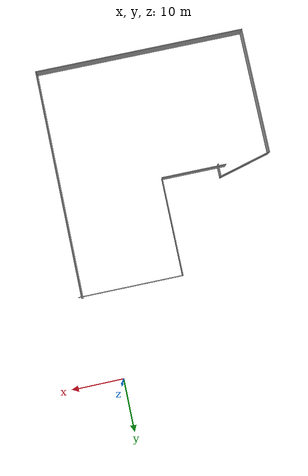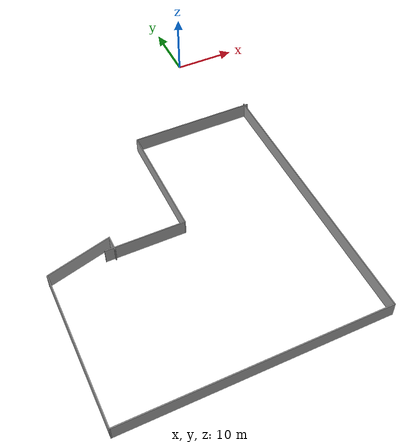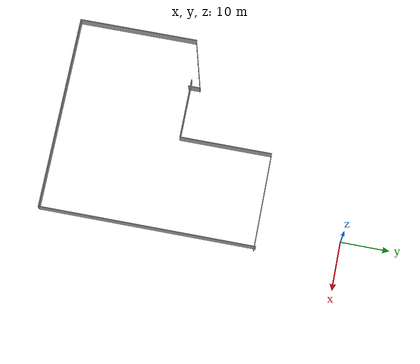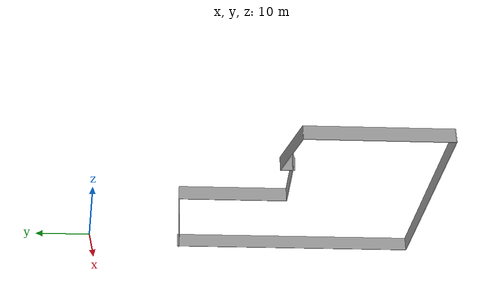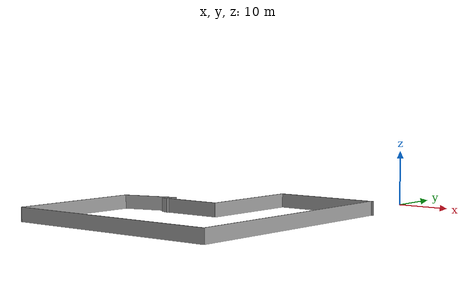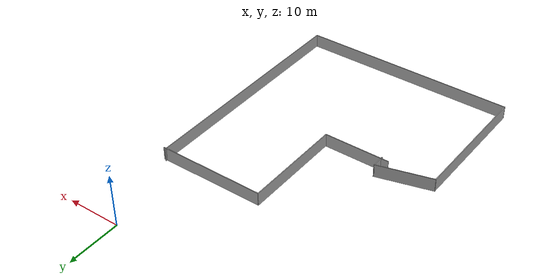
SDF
<?xml version='1.0'?>
<sdf version='1.6'>
  <model name='laboratorio'>
    <pose frame=''>-15.4183 -38.4994 0 0 -0 0</pose>
    <link name='Wall_17'>
      <collision name='Wall_17_Collision'>
        <geometry>
          <box>
            <size>12.5 0.15 2.5</size>
          </box>
        </geometry>
        <pose frame=''>0 0 1.25 0 -0 0</pose>
      </collision>
      <visual name='Wall_17_Visual'>
        <pose frame=''>0 0 1.25 0 -0 0</pose>
        <geometry>
          <box>
            <size>12.5 0.15 2.5</size>
          </box>
        </geometry>
        <material>
          <script>
            <uri>file://media/materials/scripts/gazebo.material</uri>
            <name>Gazebo/Grey</name>
          </script>
          <ambient>1 1 1 1</ambient>
        </material>
        <meta>
          <layer>0</layer>
        </meta>
      </visual>
      <pose frame=''>-5.60911 2.94682 0 0 -0 0</pose>
    </link>
    <link name='Wall_18'>
      <collision name='Wall_18_Collision'>
        <geometry>
          <box>
            <size>19 0.15 2.5</size>
          </box>
        </geometry>
        <pose frame=''>0 0 1.25 0 -0 0</pose>
      </collision>
      <visual name='Wall_18_Visual'>
        <pose frame=''>0 0 1.25 0 -0 0</pose>
        <geometry>
          <box>
            <size>19 0.15 2.5</size>
          </box>
        </geometry>
        <material>
          <script>
            <uri>file://media/materials/scripts/gazebo.material</uri>
            <name>Gazebo/Grey</name>
          </script>
          <ambient>1 1 1 1</ambient>
        </material>
        <meta>
          <layer>0</layer>
        </meta>
      </visual>
      <pose frame=''>0.565891 12.3718 0 0 -0 1.5708</pose>
    </link>
    <link name='Wall_19'>
      <collision name='Wall_19_Collision'>
        <geometry>
          <box>
            <size>20 0.15 2.5</size>
          </box>
        </geometry>
        <pose frame=''>0 0 1.25 0 -0 0</pose>
      </collision>
      <visual name='Wall_19_Visual'>
        <pose frame=''>0 0 1.25 0 -0 0</pose>
        <geometry>
          <box>
            <size>20 0.15 2.5</size>
          </box>
        </geometry>
        <material>
          <script>
            <uri>file://media/materials/scripts/gazebo.material</uri>
            <name>Gazebo/Grey</name>
          </script>
          <ambient>1 1 1 1</ambient>
        </material>
        <meta>
          <layer>0</layer>
        </meta>
      </visual>
      <pose frame=''>10.4909 21.7968 0 0 -0 0</pose>
    </link>
    <link name='Wall_21'>
      <collision name='Wall_21_Collision'>
        <geometry>
          <box>
            <size>44.25 0.15 2.5</size>
          </box>
        </geometry>
        <pose frame=''>0 0 1.25 0 -0 0</pose>
      </collision>
      <visual name='Wall_21_Visual'>
        <pose frame=''>0 0 1.25 0 -0 0</pose>
        <geometry>
          <box>
            <size>44.25 0.15 2.5</size>
          </box>
        </geometry>
        <material>
          <script>
            <uri>file://media/materials/scripts/gazebo.material</uri>
            <name>Gazebo/Grey</name>
          </script>
          <ambient>1 1 1 1</ambient>
        </material>
        <meta>
          <layer>0</layer>
        </meta>
      </visual>
      <pose frame=''>19.951 -1e-06 0 0 -0 -1.5708</pose>
    </link>
    <link name='Wall_22'>
      <collision name='Wall_22_Collision'>
        <geometry>
          <box>
            <size>40.5 0.15 2.5</size>
          </box>
        </geometry>
        <pose frame=''>0 0 1.25 0 -0 0</pose>
      </collision>
      <visual name='Wall_22_Visual'>
        <pose frame=''>0 0 1.25 0 -0 0</pose>
        <geometry>
          <box>
            <size>40.5 0.15 2.5</size>
          </box>
        </geometry>
        <material>
          <script>
            <uri>file://media/materials/scripts/gazebo.material</uri>
            <name>Gazebo/Grey</name>
          </script>
          <ambient>1 1 1 1</ambient>
        </material>
        <meta>
          <layer>0</layer>
        </meta>
      </visual>
      <pose frame=''>-0.224034 -22.05 0 0 -0 3.14159</pose>
    </link>
    <link name='Wall_23'>
      <collision name='Wall_23_Collision'>
        <geometry>
          <box>
            <size>24.5 0.15 2.5</size>
          </box>
        </geometry>
        <pose frame=''>0 0 1.25 0 -0 0</pose>
      </collision>
      <visual name='Wall_23_Visual'>
        <pose frame=''>0 0 1.25 0 -0 0</pose>
        <geometry>
          <box>
            <size>24.5 0.15 2.5</size>
          </box>
        </geometry>
        <material>
          <script>
            <uri>file://media/materials/scripts/gazebo.material</uri>
            <name>Gazebo/Grey</name>
          </script>
          <ambient>1 1 1 1</ambient>
        </material>
        <meta>
          <layer>0</layer>
        </meta>
      </visual>
      <pose frame=''>-20.399 -9.875 0 0 -0 1.5708</pose>
    </link>
    <link name='Wall_24'>
      <collision name='Wall_24_Collision'>
        <geometry>
          <box>
            <size>10.5 0.15 2.5</size>
          </box>
        </geometry>
        <pose frame=''>0 0 1.25 0 -0 0</pose>
      </collision>
      <visual name='Wall_24_Visual'>
        <pose frame=''>0 0 1.25 0 -0 0</pose>
        <geometry>
          <box>
            <size>10.5 0.15 2.5</size>
          </box>
        </geometry>
        <material>
          <script>
            <uri>file://media/materials/scripts/gazebo.material</uri>
            <name>Gazebo/Grey</name>
          </script>
          <ambient>1 1 1 1</ambient>
        </material>
        <meta>
          <layer>0</layer>
        </meta>
      </visual>
      <pose frame=''>-15.4004 3.63939 0 0 -0 0.261799</pose>
    </link>
    <link name='Wall_25'>
      <collision name='Wall_25_Collision'>
        <geometry>
          <box>
            <size>2.5 0.15 2.5</size>
          </box>
        </geometry>
        <pose frame=''>0 0 1.25 0 -0 0</pose>
      </collision>
      <visual name='Wall_25_Visual'>
        <pose frame=''>0 0 1.25 0 -0 0</pose>
        <geometry>
          <box>
            <size>2.5 0.15 2.5</size>
          </box>
        </geometry>
        <material>
          <script>
            <uri>file://media/materials/scripts/gazebo.material</uri>
            <name>Gazebo/Grey</name>
          </script>
          <ambient>1 1 1 1</ambient>
        </material>
        <meta>
          <layer>0</layer>
        </meta>
      </visual>
      <pose frame=''>-10.4017 3.80378 0 0 -0 -1.5708</pose>
    </link>
    <static>1</static>
  </model>
</sdf>
